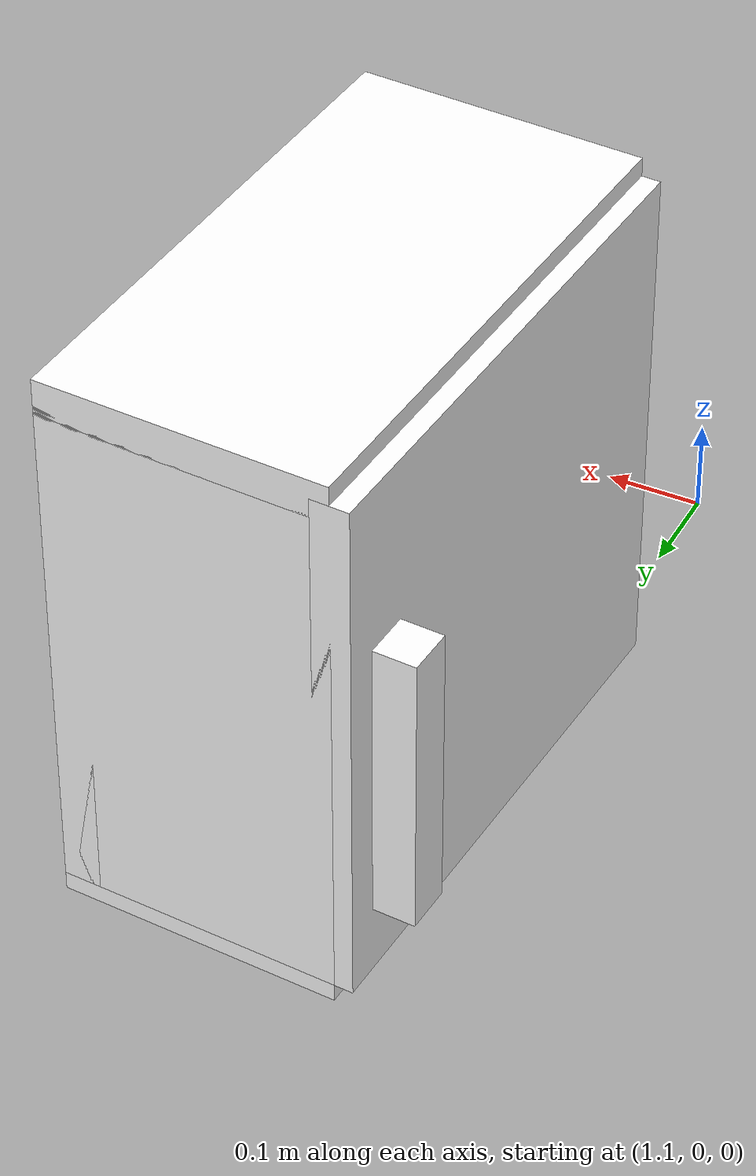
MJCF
<mujoco model="cabinet">
    <compiler angle="radian" eulerseq='zxy' />
    <option gravity = "0 0 0" />
    <option>
        <flag contact = "disable"/>
    </option>
    <statistic	extent="1.0" center="0.0 0.0 0.0"/>
    <visual>
        <map fogstart="3" fogend="5" force="0.1" znear=" 0.100000 " zfar=" 12.000000 "/>
    </visual>
    <size njmax="500" nconmax="100" />
    <actuator>
        <velocity joint="bottom_left_hinge" name="viva_revolution" kv='10'></velocity>
    </actuator>
    <asset>
        <texture builtin="flat" name="tabletex" height="32" width="32" rgb1="1 1 1" type="cube"></texture>
        <texture builtin="flat" name="objtex" height="32" width="32" rgb1="1 1 1" type="cube"></texture>
        <texture builtin="flat" name="handletex" height="32" width="32" rgb1="1 1 1" type="cube"></texture>
        <texture builtin="flat" name="wallpaper" height="32" width="32" rgb1="1 1 1" type="cube"></texture>
        <material name="geomTable" shininess="0.03" specular="0.75" texture="tabletex"></material>
        <material name="geomObj" shininess="0.03" specular="0.75" texture="objtex"></material>
        <material name="geomHandle" shininess="0.03" specular="0.75" texture="handletex"></material>
        <material name="bg" shininess="0.03" specular="0.75" texture="wallpaper"></material>
    </asset>
    <worldbody>
            <body name="cabinet_bottom" pos= " 1.361435 0.285712 -0.225547 "  quat= " 0.027399 0.000000 0.000000 0.999625" >
                <inertial pos="0 0 0" mass="1" diaginertia="1 1 1" />
                <geom size= " 0.159285 0.304357 0.021215 "  type="box" material="geomObj" name="b"/>
                <body name="cabinet_left" pos= " 0.000000 -0.283142 0.302670 " >
                    <inertial pos="0 0 0" mass="1" diaginertia="1 1 1" />
                    <geom size= " 0.159285 0.021215 0.302670 "  type="box" material="geomObj" name="c" />
                </body>
                <body name="cabinet_right" pos= " 0.000000 0.283142 0.302670 " >
                    <inertial pos="0 0 0" mass="1" diaginertia="1 1 1" />
                    <geom size= " 0.159285 0.021215 0.302670 "  type="box" material="geomObj" name="d" />
                </body>
                <body name="cabinet_top" pos= " 0.000000 0.000000 0.605340 " >
                    <inertial pos="0 0 0" mass="1" diaginertia="1 1 1" />
                    <geom size= " 0.159285 0.304357 0.021215 "  type="box" material="geomObj" name="e"/>
                </body>
                <body name="cabinet_back" pos= " -0.138070 0.000000 0.302670 "  >
                    <inertial pos="0 0 0" mass="1" diaginertia="1 1 1" />
                    <geom size= " 0.021215 0.304357 0.302670 "  type="box" material="geomObj" name="f" />
                </body>
                <body name="cabinet_left_hinge" pos= " 0.159285 0.304357 0.302670 " >
                    <inertial pos= " 0.000000 -0.304357 0.000000 "  mass="1" diaginertia="1 1 1" />
                    <joint name="bottom_left_hinge" type="hinge" pos="0 0 0" axis="0 0 1" limited="true" range= "0 2.3"  />
                    <geom size= " 0.021215 0.304357 0.302670 "  pos= " 0.000000 -0.304357 0.000000 "  type="box" material="geomObj" name="g"/>
                    <body name="handle_link" pos= " 0.039821 -0.543234 -0.053494 " >
                        <inertial pos="0 0 0" mass="1" diaginertia="1 1 1" />
                        <geom size= " 0.029221 0.026668 0.166674 "  type="box" material="geomHandle" name="h"/>
                    </body>
                </body>
            </body>
        <body name="external_camera_body_0" pos="0.0 0 0.00">
            <camera euler="-1.57 1.57 0.0" fovy=" 54.280851 " name="external_camera_0" pos="0.0 0 0"></camera>
            <inertial pos= " 0.00 0.0 0.000000 " mass="1" diaginertia="1 1 1" />
            <joint name="cam_j" pos="0.0 0 0" axis = "1 0 0" type="free" />
        </body>
    </worldbody>
</mujoco>
